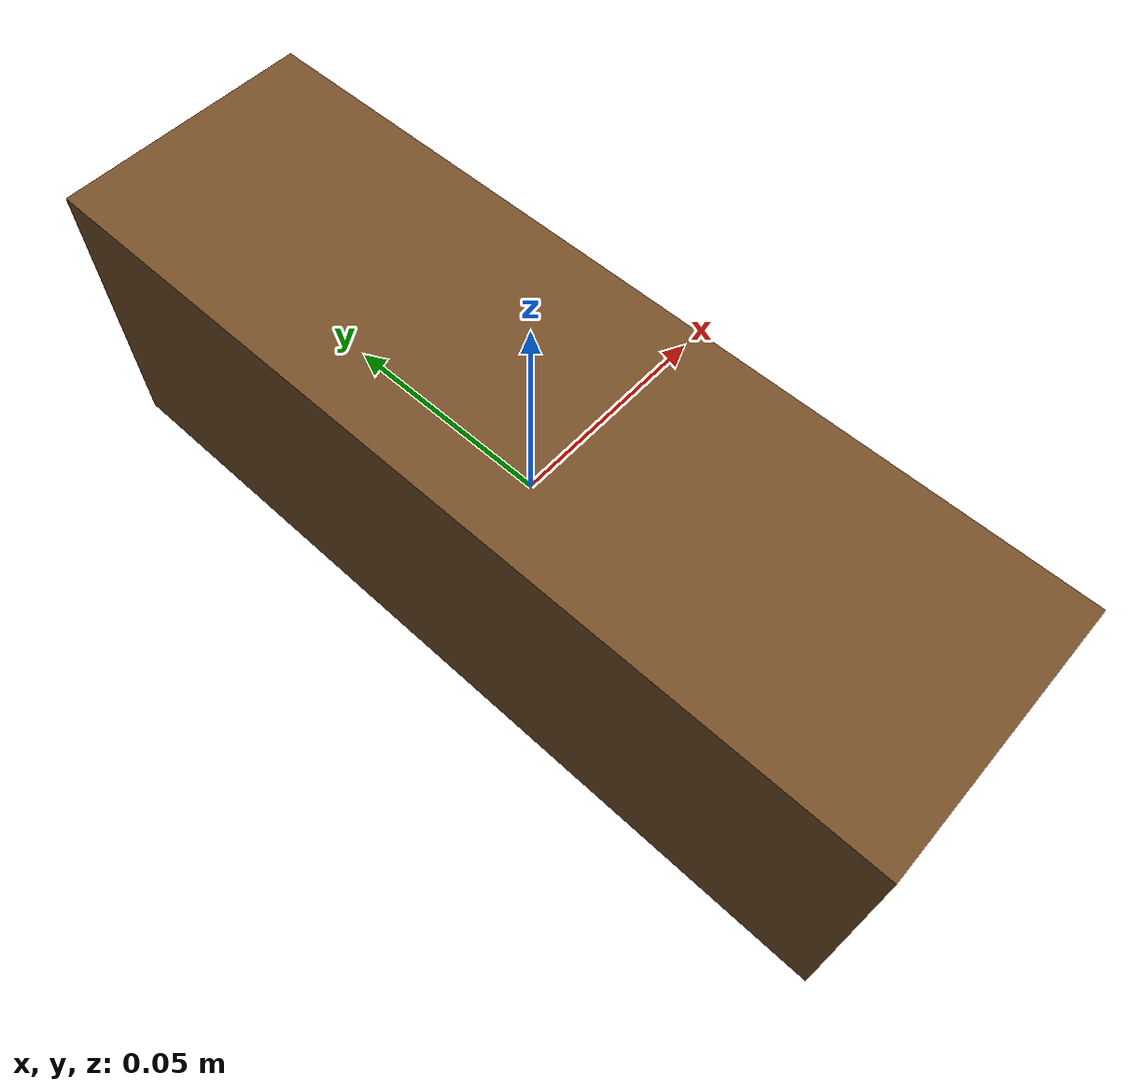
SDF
<?xml version="1.0"?>
<sdf version="1.6">
  <model name="reach_table">
    <static>true</static>
    <link name="link">
      <collision name="collision"><geometry><box><size>0.06 0.20 0.071</size></box></geometry></collision>
      <visual name="visual">
        <geometry><box><size>0.06 0.20 0.071</size></box></geometry>
        <material><ambient>0.45 0.3 0.15 1</ambient><diffuse>0.45 0.3 0.15 1</diffuse></material>
      </visual>
    </link>
  </model>
</sdf>
